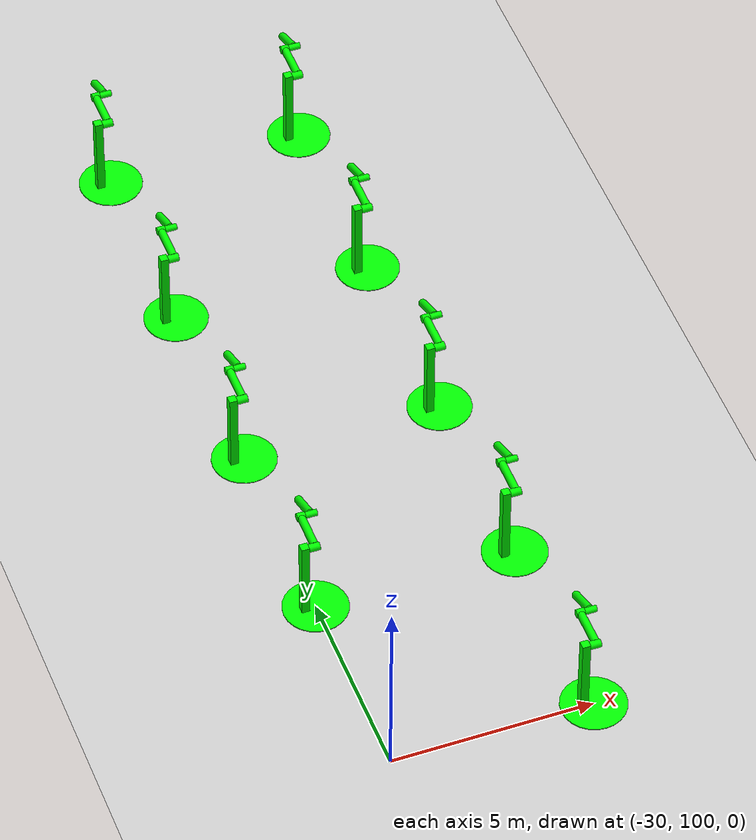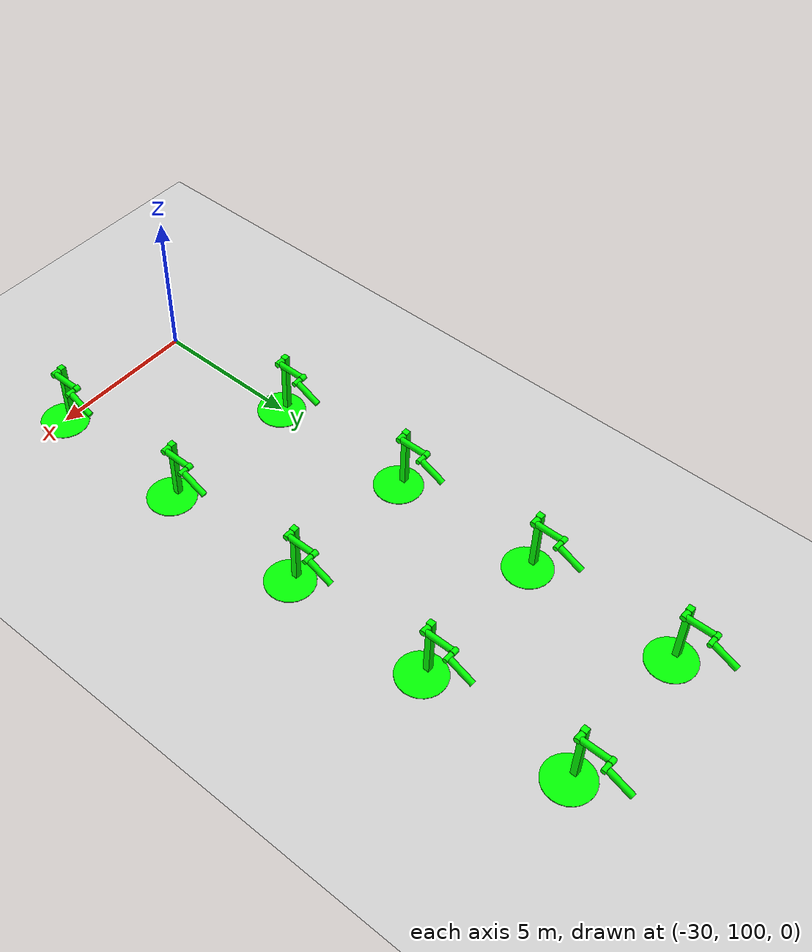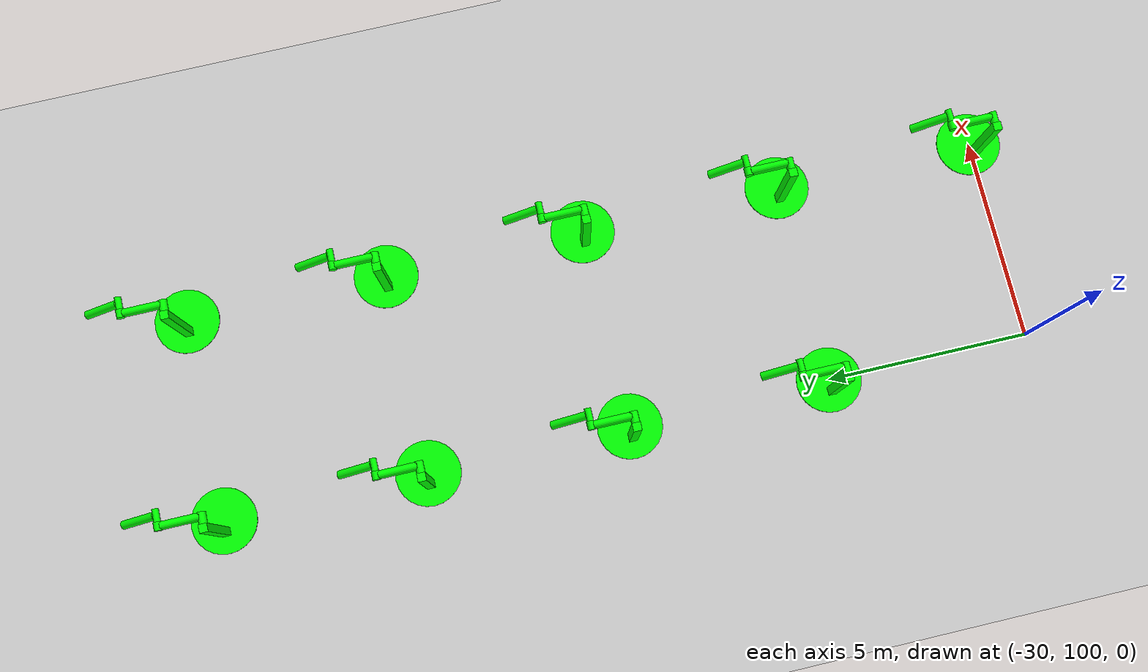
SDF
<sdf version="1.6">
 <world name="double_pendulums">
  <model name="ground_plane">
   <static>true</static>
   <link name="link">
    <collision name="collision">
     <geometry><plane><normal>0 0 1</normal><size>100 100</size></plane></geometry>
    </collision>
    <visual name="visual">
     <geometry><plane><normal>0 0 1</normal><size>100 100</size></plane></geometry>
     <material>
      <ambient>0.8 0.8 0.8 1</ambient>
      <diffuse>0.8 0.8 0.8 1</diffuse>
      <specular>0.8 0.8 0.8 1</specular>
     </material>
    </visual>
   </link>
  </model>
  <model name="dbl_pendulum_505">
   <pose>-25 100 0 0 0 0</pose>
   <link name="base">
    <inertial><mass>100</mass></inertial>
    <visual name="vis_plate_on_ground">
     <pose>0 0 0.01 0 0 0</pose>
     <geometry><cylinder><radius>0.8</radius><length>0.02</length></cylinder></geometry>
     <material><ambient>0 1 0 1</ambient><diffuse>0 1 0 1</diffuse><specular>0 1 0 1</specular></material>
    </visual>
    <visual name="vis_pole">
     <pose>-0.275 0 1.1 0 0 0</pose>
     <geometry><box><size>0.2 0.2 2.2</size></box></geometry>
     <material><ambient>0 1 0 1</ambient><diffuse>0 1 0 1</diffuse><specular>0 1 0 1</specular></material>
    </visual>
    <collision name="col_plate_on_ground">
     <pose>0 0 0.01 0 0 0</pose>
     <geometry><cylinder><radius>0.8</radius><length>0.02</length></cylinder></geometry>
    </collision>
    <collision name="col_pole">
     <pose>-0.275 0 1.1 0 0 0</pose>
     <geometry><box><size>0.2 0.2 2.2</size></box></geometry>
    </collision>
   </link>
   <link name="upper_link">
    <pose>0 0 2.1 -1.5708 0 0</pose>
    <inertial><pose>0 0 0.5 0 0 0</pose></inertial>
    <visual name="vis_upper_joint">
     <pose>-0.05 0 0 0 1.5708 0</pose>
     <geometry><cylinder><radius>0.1</radius><length>0.3</length></cylinder></geometry>
     <material><ambient>0 1 0 1</ambient><diffuse>0 1 0 1</diffuse><specular>0 1 0 1</specular></material>
    </visual>
    <visual name="vis_lower_joint">
     <pose>0 0 1.0 0 1.5708 0</pose>
     <geometry><cylinder><radius>0.1</radius><length>0.2</length></cylinder></geometry>
     <material><ambient>0 1 0 1</ambient><diffuse>0 1 0 1</diffuse><specular>0 1 0 1</specular></material>
    </visual>
    <visual name="vis_cylinder">
     <pose>0 0 0.5 0 0 0</pose>
     <geometry><cylinder><radius>0.1</radius><length>0.9</length></cylinder></geometry>
     <material><ambient>0 1 0 1</ambient><diffuse>0 1 0 1</diffuse><specular>0 1 0 1</specular></material>
    </visual>
    <collision name="col_upper_joint">
     <pose>-0.05 0 0 0 1.5708 0</pose>
     <geometry><cylinder><radius>0.1</radius><length>0.3</length></cylinder></geometry>
    </collision>
    <collision name="col_lower_joint">
     <pose>0 0 1.0 0 1.5708 0</pose>
     <geometry><cylinder><radius>0.1</radius><length>0.2</length></cylinder></geometry>
    </collision>
    <collision name="col_cylinder">
     <pose>0 0 0.5 0 0 0</pose>
     <geometry><cylinder><radius>0.1</radius><length>0.9</length></cylinder></geometry>
    </collision>
   </link>
   <link name="lower_link">
    <pose>0.25 1.0 2.1 -2 0 0</pose>
    <inertial><pose>0 0 0.5 0 0 0</pose></inertial>
    <visual name="vis_lower_joint">
     <pose>0 0 0 0 1.5708 0</pose>
     <geometry><cylinder><radius>0.08</radius><length>0.3</length></cylinder></geometry>
     <material><ambient>0 1 0 1</ambient><diffuse>0 1 0 1</diffuse><specular>0 1 0 1</specular></material>
    </visual>
    <visual name="vis_cylinder">
     <pose>0 0 0.5 0 0 0</pose>
     <geometry><cylinder><radius>0.1</radius><length>0.9</length></cylinder></geometry>
     <material><ambient>0 1 0 1</ambient><diffuse>0 1 0 1</diffuse><specular>0 1 0 1</specular></material>
    </visual>
    <collision name="col_lower_joint">
     <pose>0 0 0 0 1.5708 0</pose>
     <geometry><cylinder><radius>0.08</radius><length>0.3</length></cylinder></geometry>
    </collision>
    <collision name="col_cylinder">
     <pose>0 0 0.5 0 0 0</pose>
     <geometry><cylinder><radius>0.1</radius><length>0.9</length></cylinder></geometry>
    </collision>
   </link>
   <joint name="upper_joint" type="revolute">
    <parent>base</parent>
    <child>upper_link</child>
    <axis><xyz>1.0 0 0</xyz></axis>
   </joint>
   <joint name="lower_joint" type="revolute">
    <parent>upper_link</parent>
    <child>lower_link</child>
    <axis><xyz>1.0 0 0</xyz></axis>
   </joint>
  </model>
  <model name="dbl_pendulum_529">
   <pose>-30 105 0 0 0 0</pose>
   <link name="base">
    <inertial><mass>100</mass></inertial>
    <visual name="vis_plate_on_ground">
     <pose>0 0 0.01 0 0 0</pose>
     <geometry><cylinder><radius>0.8</radius><length>0.02</length></cylinder></geometry>
     <material><ambient>0 1 0 1</ambient><diffuse>0 1 0 1</diffuse><specular>0 1 0 1</specular></material>
    </visual>
    <visual name="vis_pole">
     <pose>-0.275 0 1.1 0 0 0</pose>
     <geometry><box><size>0.2 0.2 2.2</size></box></geometry>
     <material><ambient>0 1 0 1</ambient><diffuse>0 1 0 1</diffuse><specular>0 1 0 1</specular></material>
    </visual>
    <collision name="col_plate_on_ground">
     <pose>0 0 0.01 0 0 0</pose>
     <geometry><cylinder><radius>0.8</radius><length>0.02</length></cylinder></geometry>
    </collision>
    <collision name="col_pole">
     <pose>-0.275 0 1.1 0 0 0</pose>
     <geometry><box><size>0.2 0.2 2.2</size></box></geometry>
    </collision>
   </link>
   <link name="upper_link">
    <pose>0 0 2.1 -1.5708 0 0</pose>
    <inertial><pose>0 0 0.5 0 0 0</pose></inertial>
    <visual name="vis_upper_joint">
     <pose>-0.05 0 0 0 1.5708 0</pose>
     <geometry><cylinder><radius>0.1</radius><length>0.3</length></cylinder></geometry>
     <material><ambient>0 1 0 1</ambient><diffuse>0 1 0 1</diffuse><specular>0 1 0 1</specular></material>
    </visual>
    <visual name="vis_lower_joint">
     <pose>0 0 1.0 0 1.5708 0</pose>
     <geometry><cylinder><radius>0.1</radius><length>0.2</length></cylinder></geometry>
     <material><ambient>0 1 0 1</ambient><diffuse>0 1 0 1</diffuse><specular>0 1 0 1</specular></material>
    </visual>
    <visual name="vis_cylinder">
     <pose>0 0 0.5 0 0 0</pose>
     <geometry><cylinder><radius>0.1</radius><length>0.9</length></cylinder></geometry>
     <material><ambient>0 1 0 1</ambient><diffuse>0 1 0 1</diffuse><specular>0 1 0 1</specular></material>
    </visual>
    <collision name="col_upper_joint">
     <pose>-0.05 0 0 0 1.5708 0</pose>
     <geometry><cylinder><radius>0.1</radius><length>0.3</length></cylinder></geometry>
    </collision>
    <collision name="col_lower_joint">
     <pose>0 0 1.0 0 1.5708 0</pose>
     <geometry><cylinder><radius>0.1</radius><length>0.2</length></cylinder></geometry>
    </collision>
    <collision name="col_cylinder">
     <pose>0 0 0.5 0 0 0</pose>
     <geometry><cylinder><radius>0.1</radius><length>0.9</length></cylinder></geometry>
    </collision>
   </link>
   <link name="lower_link">
    <pose>0.25 1.0 2.1 -2 0 0</pose>
    <inertial><pose>0 0 0.5 0 0 0</pose></inertial>
    <visual name="vis_lower_joint">
     <pose>0 0 0 0 1.5708 0</pose>
     <geometry><cylinder><radius>0.08</radius><length>0.3</length></cylinder></geometry>
     <material><ambient>0 1 0 1</ambient><diffuse>0 1 0 1</diffuse><specular>0 1 0 1</specular></material>
    </visual>
    <visual name="vis_cylinder">
     <pose>0 0 0.5 0 0 0</pose>
     <geometry><cylinder><radius>0.1</radius><length>0.9</length></cylinder></geometry>
     <material><ambient>0 1 0 1</ambient><diffuse>0 1 0 1</diffuse><specular>0 1 0 1</specular></material>
    </visual>
    <collision name="col_lower_joint">
     <pose>0 0 0 0 1.5708 0</pose>
     <geometry><cylinder><radius>0.08</radius><length>0.3</length></cylinder></geometry>
    </collision>
    <collision name="col_cylinder">
     <pose>0 0 0.5 0 0 0</pose>
     <geometry><cylinder><radius>0.1</radius><length>0.9</length></cylinder></geometry>
    </collision>
   </link>
   <joint name="upper_joint" type="revolute">
    <parent>base</parent>
    <child>upper_link</child>
    <axis><xyz>1.0 0 0</xyz></axis>
   </joint>
   <joint name="lower_joint" type="revolute">
    <parent>upper_link</parent>
    <child>lower_link</child>
    <axis><xyz>1.0 0 0</xyz></axis>
   </joint>
  </model>
  <model name="dbl_pendulum_530">
   <pose>-25 105 0 0 0 0</pose>
   <link name="base">
    <inertial><mass>100</mass></inertial>
    <visual name="vis_plate_on_ground">
     <pose>0 0 0.01 0 0 0</pose>
     <geometry><cylinder><radius>0.8</radius><length>0.02</length></cylinder></geometry>
     <material><ambient>0 1 0 1</ambient><diffuse>0 1 0 1</diffuse><specular>0 1 0 1</specular></material>
    </visual>
    <visual name="vis_pole">
     <pose>-0.275 0 1.1 0 0 0</pose>
     <geometry><box><size>0.2 0.2 2.2</size></box></geometry>
     <material><ambient>0 1 0 1</ambient><diffuse>0 1 0 1</diffuse><specular>0 1 0 1</specular></material>
    </visual>
    <collision name="col_plate_on_ground">
     <pose>0 0 0.01 0 0 0</pose>
     <geometry><cylinder><radius>0.8</radius><length>0.02</length></cylinder></geometry>
    </collision>
    <collision name="col_pole">
     <pose>-0.275 0 1.1 0 0 0</pose>
     <geometry><box><size>0.2 0.2 2.2</size></box></geometry>
    </collision>
   </link>
   <link name="upper_link">
    <pose>0 0 2.1 -1.5708 0 0</pose>
    <inertial><pose>0 0 0.5 0 0 0</pose></inertial>
    <visual name="vis_upper_joint">
     <pose>-0.05 0 0 0 1.5708 0</pose>
     <geometry><cylinder><radius>0.1</radius><length>0.3</length></cylinder></geometry>
     <material><ambient>0 1 0 1</ambient><diffuse>0 1 0 1</diffuse><specular>0 1 0 1</specular></material>
    </visual>
    <visual name="vis_lower_joint">
     <pose>0 0 1.0 0 1.5708 0</pose>
     <geometry><cylinder><radius>0.1</radius><length>0.2</length></cylinder></geometry>
     <material><ambient>0 1 0 1</ambient><diffuse>0 1 0 1</diffuse><specular>0 1 0 1</specular></material>
    </visual>
    <visual name="vis_cylinder">
     <pose>0 0 0.5 0 0 0</pose>
     <geometry><cylinder><radius>0.1</radius><length>0.9</length></cylinder></geometry>
     <material><ambient>0 1 0 1</ambient><diffuse>0 1 0 1</diffuse><specular>0 1 0 1</specular></material>
    </visual>
    <collision name="col_upper_joint">
     <pose>-0.05 0 0 0 1.5708 0</pose>
     <geometry><cylinder><radius>0.1</radius><length>0.3</length></cylinder></geometry>
    </collision>
    <collision name="col_lower_joint">
     <pose>0 0 1.0 0 1.5708 0</pose>
     <geometry><cylinder><radius>0.1</radius><length>0.2</length></cylinder></geometry>
    </collision>
    <collision name="col_cylinder">
     <pose>0 0 0.5 0 0 0</pose>
     <geometry><cylinder><radius>0.1</radius><length>0.9</length></cylinder></geometry>
    </collision>
   </link>
   <link name="lower_link">
    <pose>0.25 1.0 2.1 -2 0 0</pose>
    <inertial><pose>0 0 0.5 0 0 0</pose></inertial>
    <visual name="vis_lower_joint">
     <pose>0 0 0 0 1.5708 0</pose>
     <geometry><cylinder><radius>0.08</radius><length>0.3</length></cylinder></geometry>
     <material><ambient>0 1 0 1</ambient><diffuse>0 1 0 1</diffuse><specular>0 1 0 1</specular></material>
    </visual>
    <visual name="vis_cylinder">
     <pose>0 0 0.5 0 0 0</pose>
     <geometry><cylinder><radius>0.1</radius><length>0.9</length></cylinder></geometry>
     <material><ambient>0 1 0 1</ambient><diffuse>0 1 0 1</diffuse><specular>0 1 0 1</specular></material>
    </visual>
    <collision name="col_lower_joint">
     <pose>0 0 0 0 1.5708 0</pose>
     <geometry><cylinder><radius>0.08</radius><length>0.3</length></cylinder></geometry>
    </collision>
    <collision name="col_cylinder">
     <pose>0 0 0.5 0 0 0</pose>
     <geometry><cylinder><radius>0.1</radius><length>0.9</length></cylinder></geometry>
    </collision>
   </link>
   <joint name="upper_joint" type="revolute">
    <parent>base</parent>
    <child>upper_link</child>
    <axis><xyz>1.0 0 0</xyz></axis>
   </joint>
   <joint name="lower_joint" type="revolute">
    <parent>upper_link</parent>
    <child>lower_link</child>
    <axis><xyz>1.0 0 0</xyz></axis>
   </joint>
  </model>
  <model name="dbl_pendulum_554">
   <pose>-30 110 0 0 0 0</pose>
   <link name="base">
    <inertial><mass>100</mass></inertial>
    <visual name="vis_plate_on_ground">
     <pose>0 0 0.01 0 0 0</pose>
     <geometry><cylinder><radius>0.8</radius><length>0.02</length></cylinder></geometry>
     <material><ambient>0 1 0 1</ambient><diffuse>0 1 0 1</diffuse><specular>0 1 0 1</specular></material>
    </visual>
    <visual name="vis_pole">
     <pose>-0.275 0 1.1 0 0 0</pose>
     <geometry><box><size>0.2 0.2 2.2</size></box></geometry>
     <material><ambient>0 1 0 1</ambient><diffuse>0 1 0 1</diffuse><specular>0 1 0 1</specular></material>
    </visual>
    <collision name="col_plate_on_ground">
     <pose>0 0 0.01 0 0 0</pose>
     <geometry><cylinder><radius>0.8</radius><length>0.02</length></cylinder></geometry>
    </collision>
    <collision name="col_pole">
     <pose>-0.275 0 1.1 0 0 0</pose>
     <geometry><box><size>0.2 0.2 2.2</size></box></geometry>
    </collision>
   </link>
   <link name="upper_link">
    <pose>0 0 2.1 -1.5708 0 0</pose>
    <inertial><pose>0 0 0.5 0 0 0</pose></inertial>
    <visual name="vis_upper_joint">
     <pose>-0.05 0 0 0 1.5708 0</pose>
     <geometry><cylinder><radius>0.1</radius><length>0.3</length></cylinder></geometry>
     <material><ambient>0 1 0 1</ambient><diffuse>0 1 0 1</diffuse><specular>0 1 0 1</specular></material>
    </visual>
    <visual name="vis_lower_joint">
     <pose>0 0 1.0 0 1.5708 0</pose>
     <geometry><cylinder><radius>0.1</radius><length>0.2</length></cylinder></geometry>
     <material><ambient>0 1 0 1</ambient><diffuse>0 1 0 1</diffuse><specular>0 1 0 1</specular></material>
    </visual>
    <visual name="vis_cylinder">
     <pose>0 0 0.5 0 0 0</pose>
     <geometry><cylinder><radius>0.1</radius><length>0.9</length></cylinder></geometry>
     <material><ambient>0 1 0 1</ambient><diffuse>0 1 0 1</diffuse><specular>0 1 0 1</specular></material>
    </visual>
    <collision name="col_upper_joint">
     <pose>-0.05 0 0 0 1.5708 0</pose>
     <geometry><cylinder><radius>0.1</radius><length>0.3</length></cylinder></geometry>
    </collision>
    <collision name="col_lower_joint">
     <pose>0 0 1.0 0 1.5708 0</pose>
     <geometry><cylinder><radius>0.1</radius><length>0.2</length></cylinder></geometry>
    </collision>
    <collision name="col_cylinder">
     <pose>0 0 0.5 0 0 0</pose>
     <geometry><cylinder><radius>0.1</radius><length>0.9</length></cylinder></geometry>
    </collision>
   </link>
   <link name="lower_link">
    <pose>0.25 1.0 2.1 -2 0 0</pose>
    <inertial><pose>0 0 0.5 0 0 0</pose></inertial>
    <visual name="vis_lower_joint">
     <pose>0 0 0 0 1.5708 0</pose>
     <geometry><cylinder><radius>0.08</radius><length>0.3</length></cylinder></geometry>
     <material><ambient>0 1 0 1</ambient><diffuse>0 1 0 1</diffuse><specular>0 1 0 1</specular></material>
    </visual>
    <visual name="vis_cylinder">
     <pose>0 0 0.5 0 0 0</pose>
     <geometry><cylinder><radius>0.1</radius><length>0.9</length></cylinder></geometry>
     <material><ambient>0 1 0 1</ambient><diffuse>0 1 0 1</diffuse><specular>0 1 0 1</specular></material>
    </visual>
    <collision name="col_lower_joint">
     <pose>0 0 0 0 1.5708 0</pose>
     <geometry><cylinder><radius>0.08</radius><length>0.3</length></cylinder></geometry>
    </collision>
    <collision name="col_cylinder">
     <pose>0 0 0.5 0 0 0</pose>
     <geometry><cylinder><radius>0.1</radius><length>0.9</length></cylinder></geometry>
    </collision>
   </link>
   <joint name="upper_joint" type="revolute">
    <parent>base</parent>
    <child>upper_link</child>
    <axis><xyz>1.0 0 0</xyz></axis>
   </joint>
   <joint name="lower_joint" type="revolute">
    <parent>upper_link</parent>
    <child>lower_link</child>
    <axis><xyz>1.0 0 0</xyz></axis>
   </joint>
  </model>
  <model name="dbl_pendulum_555">
   <pose>-25 110 0 0 0 0</pose>
   <link name="base">
    <inertial><mass>100</mass></inertial>
    <visual name="vis_plate_on_ground">
     <pose>0 0 0.01 0 0 0</pose>
     <geometry><cylinder><radius>0.8</radius><length>0.02</length></cylinder></geometry>
     <material><ambient>0 1 0 1</ambient><diffuse>0 1 0 1</diffuse><specular>0 1 0 1</specular></material>
    </visual>
    <visual name="vis_pole">
     <pose>-0.275 0 1.1 0 0 0</pose>
     <geometry><box><size>0.2 0.2 2.2</size></box></geometry>
     <material><ambient>0 1 0 1</ambient><diffuse>0 1 0 1</diffuse><specular>0 1 0 1</specular></material>
    </visual>
    <collision name="col_plate_on_ground">
     <pose>0 0 0.01 0 0 0</pose>
     <geometry><cylinder><radius>0.8</radius><length>0.02</length></cylinder></geometry>
    </collision>
    <collision name="col_pole">
     <pose>-0.275 0 1.1 0 0 0</pose>
     <geometry><box><size>0.2 0.2 2.2</size></box></geometry>
    </collision>
   </link>
   <link name="upper_link">
    <pose>0 0 2.1 -1.5708 0 0</pose>
    <inertial><pose>0 0 0.5 0 0 0</pose></inertial>
    <visual name="vis_upper_joint">
     <pose>-0.05 0 0 0 1.5708 0</pose>
     <geometry><cylinder><radius>0.1</radius><length>0.3</length></cylinder></geometry>
     <material><ambient>0 1 0 1</ambient><diffuse>0 1 0 1</diffuse><specular>0 1 0 1</specular></material>
    </visual>
    <visual name="vis_lower_joint">
     <pose>0 0 1.0 0 1.5708 0</pose>
     <geometry><cylinder><radius>0.1</radius><length>0.2</length></cylinder></geometry>
     <material><ambient>0 1 0 1</ambient><diffuse>0 1 0 1</diffuse><specular>0 1 0 1</specular></material>
    </visual>
    <visual name="vis_cylinder">
     <pose>0 0 0.5 0 0 0</pose>
     <geometry><cylinder><radius>0.1</radius><length>0.9</length></cylinder></geometry>
     <material><ambient>0 1 0 1</ambient><diffuse>0 1 0 1</diffuse><specular>0 1 0 1</specular></material>
    </visual>
    <collision name="col_upper_joint">
     <pose>-0.05 0 0 0 1.5708 0</pose>
     <geometry><cylinder><radius>0.1</radius><length>0.3</length></cylinder></geometry>
    </collision>
    <collision name="col_lower_joint">
     <pose>0 0 1.0 0 1.5708 0</pose>
     <geometry><cylinder><radius>0.1</radius><length>0.2</length></cylinder></geometry>
    </collision>
    <collision name="col_cylinder">
     <pose>0 0 0.5 0 0 0</pose>
     <geometry><cylinder><radius>0.1</radius><length>0.9</length></cylinder></geometry>
    </collision>
   </link>
   <link name="lower_link">
    <pose>0.25 1.0 2.1 -2 0 0</pose>
    <inertial><pose>0 0 0.5 0 0 0</pose></inertial>
    <visual name="vis_lower_joint">
     <pose>0 0 0 0 1.5708 0</pose>
     <geometry><cylinder><radius>0.08</radius><length>0.3</length></cylinder></geometry>
     <material><ambient>0 1 0 1</ambient><diffuse>0 1 0 1</diffuse><specular>0 1 0 1</specular></material>
    </visual>
    <visual name="vis_cylinder">
     <pose>0 0 0.5 0 0 0</pose>
     <geometry><cylinder><radius>0.1</radius><length>0.9</length></cylinder></geometry>
     <material><ambient>0 1 0 1</ambient><diffuse>0 1 0 1</diffuse><specular>0 1 0 1</specular></material>
    </visual>
    <collision name="col_lower_joint">
     <pose>0 0 0 0 1.5708 0</pose>
     <geometry><cylinder><radius>0.08</radius><length>0.3</length></cylinder></geometry>
    </collision>
    <collision name="col_cylinder">
     <pose>0 0 0.5 0 0 0</pose>
     <geometry><cylinder><radius>0.1</radius><length>0.9</length></cylinder></geometry>
    </collision>
   </link>
   <joint name="upper_joint" type="revolute">
    <parent>base</parent>
    <child>upper_link</child>
    <axis><xyz>1.0 0 0</xyz></axis>
   </joint>
   <joint name="lower_joint" type="revolute">
    <parent>upper_link</parent>
    <child>lower_link</child>
    <axis><xyz>1.0 0 0</xyz></axis>
   </joint>
  </model>
  <model name="dbl_pendulum_579">
   <pose>-30 115 0 0 0 0</pose>
   <link name="base">
    <inertial><mass>100</mass></inertial>
    <visual name="vis_plate_on_ground">
     <pose>0 0 0.01 0 0 0</pose>
     <geometry><cylinder><radius>0.8</radius><length>0.02</length></cylinder></geometry>
     <material><ambient>0 1 0 1</ambient><diffuse>0 1 0 1</diffuse><specular>0 1 0 1</specular></material>
    </visual>
    <visual name="vis_pole">
     <pose>-0.275 0 1.1 0 0 0</pose>
     <geometry><box><size>0.2 0.2 2.2</size></box></geometry>
     <material><ambient>0 1 0 1</ambient><diffuse>0 1 0 1</diffuse><specular>0 1 0 1</specular></material>
    </visual>
    <collision name="col_plate_on_ground">
     <pose>0 0 0.01 0 0 0</pose>
     <geometry><cylinder><radius>0.8</radius><length>0.02</length></cylinder></geometry>
    </collision>
    <collision name="col_pole">
     <pose>-0.275 0 1.1 0 0 0</pose>
     <geometry><box><size>0.2 0.2 2.2</size></box></geometry>
    </collision>
   </link>
   <link name="upper_link">
    <pose>0 0 2.1 -1.5708 0 0</pose>
    <inertial><pose>0 0 0.5 0 0 0</pose></inertial>
    <visual name="vis_upper_joint">
     <pose>-0.05 0 0 0 1.5708 0</pose>
     <geometry><cylinder><radius>0.1</radius><length>0.3</length></cylinder></geometry>
     <material><ambient>0 1 0 1</ambient><diffuse>0 1 0 1</diffuse><specular>0 1 0 1</specular></material>
    </visual>
    <visual name="vis_lower_joint">
     <pose>0 0 1.0 0 1.5708 0</pose>
     <geometry><cylinder><radius>0.1</radius><length>0.2</length></cylinder></geometry>
     <material><ambient>0 1 0 1</ambient><diffuse>0 1 0 1</diffuse><specular>0 1 0 1</specular></material>
    </visual>
    <visual name="vis_cylinder">
     <pose>0 0 0.5 0 0 0</pose>
     <geometry><cylinder><radius>0.1</radius><length>0.9</length></cylinder></geometry>
     <material><ambient>0 1 0 1</ambient><diffuse>0 1 0 1</diffuse><specular>0 1 0 1</specular></material>
    </visual>
    <collision name="col_upper_joint">
     <pose>-0.05 0 0 0 1.5708 0</pose>
     <geometry><cylinder><radius>0.1</radius><length>0.3</length></cylinder></geometry>
    </collision>
    <collision name="col_lower_joint">
     <pose>0 0 1.0 0 1.5708 0</pose>
     <geometry><cylinder><radius>0.1</radius><length>0.2</length></cylinder></geometry>
    </collision>
    <collision name="col_cylinder">
     <pose>0 0 0.5 0 0 0</pose>
     <geometry><cylinder><radius>0.1</radius><length>0.9</length></cylinder></geometry>
    </collision>
   </link>
   <link name="lower_link">
    <pose>0.25 1.0 2.1 -2 0 0</pose>
    <inertial><pose>0 0 0.5 0 0 0</pose></inertial>
    <visual name="vis_lower_joint">
     <pose>0 0 0 0 1.5708 0</pose>
     <geometry><cylinder><radius>0.08</radius><length>0.3</length></cylinder></geometry>
     <material><ambient>0 1 0 1</ambient><diffuse>0 1 0 1</diffuse><specular>0 1 0 1</specular></material>
    </visual>
    <visual name="vis_cylinder">
     <pose>0 0 0.5 0 0 0</pose>
     <geometry><cylinder><radius>0.1</radius><length>0.9</length></cylinder></geometry>
     <material><ambient>0 1 0 1</ambient><diffuse>0 1 0 1</diffuse><specular>0 1 0 1</specular></material>
    </visual>
    <collision name="col_lower_joint">
     <pose>0 0 0 0 1.5708 0</pose>
     <geometry><cylinder><radius>0.08</radius><length>0.3</length></cylinder></geometry>
    </collision>
    <collision name="col_cylinder">
     <pose>0 0 0.5 0 0 0</pose>
     <geometry><cylinder><radius>0.1</radius><length>0.9</length></cylinder></geometry>
    </collision>
   </link>
   <joint name="upper_joint" type="revolute">
    <parent>base</parent>
    <child>upper_link</child>
    <axis><xyz>1.0 0 0</xyz></axis>
   </joint>
   <joint name="lower_joint" type="revolute">
    <parent>upper_link</parent>
    <child>lower_link</child>
    <axis><xyz>1.0 0 0</xyz></axis>
   </joint>
  </model>
  <model name="dbl_pendulum_580">
   <pose>-25 115 0 0 0 0</pose>
   <link name="base">
    <inertial><mass>100</mass></inertial>
    <visual name="vis_plate_on_ground">
     <pose>0 0 0.01 0 0 0</pose>
     <geometry><cylinder><radius>0.8</radius><length>0.02</length></cylinder></geometry>
     <material><ambient>0 1 0 1</ambient><diffuse>0 1 0 1</diffuse><specular>0 1 0 1</specular></material>
    </visual>
    <visual name="vis_pole">
     <pose>-0.275 0 1.1 0 0 0</pose>
     <geometry><box><size>0.2 0.2 2.2</size></box></geometry>
     <material><ambient>0 1 0 1</ambient><diffuse>0 1 0 1</diffuse><specular>0 1 0 1</specular></material>
    </visual>
    <collision name="col_plate_on_ground">
     <pose>0 0 0.01 0 0 0</pose>
     <geometry><cylinder><radius>0.8</radius><length>0.02</length></cylinder></geometry>
    </collision>
    <collision name="col_pole">
     <pose>-0.275 0 1.1 0 0 0</pose>
     <geometry><box><size>0.2 0.2 2.2</size></box></geometry>
    </collision>
   </link>
   <link name="upper_link">
    <pose>0 0 2.1 -1.5708 0 0</pose>
    <inertial><pose>0 0 0.5 0 0 0</pose></inertial>
    <visual name="vis_upper_joint">
     <pose>-0.05 0 0 0 1.5708 0</pose>
     <geometry><cylinder><radius>0.1</radius><length>0.3</length></cylinder></geometry>
     <material><ambient>0 1 0 1</ambient><diffuse>0 1 0 1</diffuse><specular>0 1 0 1</specular></material>
    </visual>
    <visual name="vis_lower_joint">
     <pose>0 0 1.0 0 1.5708 0</pose>
     <geometry><cylinder><radius>0.1</radius><length>0.2</length></cylinder></geometry>
     <material><ambient>0 1 0 1</ambient><diffuse>0 1 0 1</diffuse><specular>0 1 0 1</specular></material>
    </visual>
    <visual name="vis_cylinder">
     <pose>0 0 0.5 0 0 0</pose>
     <geometry><cylinder><radius>0.1</radius><length>0.9</length></cylinder></geometry>
     <material><ambient>0 1 0 1</ambient><diffuse>0 1 0 1</diffuse><specular>0 1 0 1</specular></material>
    </visual>
    <collision name="col_upper_joint">
     <pose>-0.05 0 0 0 1.5708 0</pose>
     <geometry><cylinder><radius>0.1</radius><length>0.3</length></cylinder></geometry>
    </collision>
    <collision name="col_lower_joint">
     <pose>0 0 1.0 0 1.5708 0</pose>
     <geometry><cylinder><radius>0.1</radius><length>0.2</length></cylinder></geometry>
    </collision>
    <collision name="col_cylinder">
     <pose>0 0 0.5 0 0 0</pose>
     <geometry><cylinder><radius>0.1</radius><length>0.9</length></cylinder></geometry>
    </collision>
   </link>
   <link name="lower_link">
    <pose>0.25 1.0 2.1 -2 0 0</pose>
    <inertial><pose>0 0 0.5 0 0 0</pose></inertial>
    <visual name="vis_lower_joint">
     <pose>0 0 0 0 1.5708 0</pose>
     <geometry><cylinder><radius>0.08</radius><length>0.3</length></cylinder></geometry>
     <material><ambient>0 1 0 1</ambient><diffuse>0 1 0 1</diffuse><specular>0 1 0 1</specular></material>
    </visual>
    <visual name="vis_cylinder">
     <pose>0 0 0.5 0 0 0</pose>
     <geometry><cylinder><radius>0.1</radius><length>0.9</length></cylinder></geometry>
     <material><ambient>0 1 0 1</ambient><diffuse>0 1 0 1</diffuse><specular>0 1 0 1</specular></material>
    </visual>
    <collision name="col_lower_joint">
     <pose>0 0 0 0 1.5708 0</pose>
     <geometry><cylinder><radius>0.08</radius><length>0.3</length></cylinder></geometry>
    </collision>
    <collision name="col_cylinder">
     <pose>0 0 0.5 0 0 0</pose>
     <geometry><cylinder><radius>0.1</radius><length>0.9</length></cylinder></geometry>
    </collision>
   </link>
   <joint name="upper_joint" type="revolute">
    <parent>base</parent>
    <child>upper_link</child>
    <axis><xyz>1.0 0 0</xyz></axis>
   </joint>
   <joint name="lower_joint" type="revolute">
    <parent>upper_link</parent>
    <child>lower_link</child>
    <axis><xyz>1.0 0 0</xyz></axis>
   </joint>
  </model>
  <model name="dbl_pendulum_604">
   <pose>-30 120 0 0 0 0</pose>
   <link name="base">
    <inertial><mass>100</mass></inertial>
    <visual name="vis_plate_on_ground">
     <pose>0 0 0.01 0 0 0</pose>
     <geometry><cylinder><radius>0.8</radius><length>0.02</length></cylinder></geometry>
     <material><ambient>0 1 0 1</ambient><diffuse>0 1 0 1</diffuse><specular>0 1 0 1</specular></material>
    </visual>
    <visual name="vis_pole">
     <pose>-0.275 0 1.1 0 0 0</pose>
     <geometry><box><size>0.2 0.2 2.2</size></box></geometry>
     <material><ambient>0 1 0 1</ambient><diffuse>0 1 0 1</diffuse><specular>0 1 0 1</specular></material>
    </visual>
    <collision name="col_plate_on_ground">
     <pose>0 0 0.01 0 0 0</pose>
     <geometry><cylinder><radius>0.8</radius><length>0.02</length></cylinder></geometry>
    </collision>
    <collision name="col_pole">
     <pose>-0.275 0 1.1 0 0 0</pose>
     <geometry><box><size>0.2 0.2 2.2</size></box></geometry>
    </collision>
   </link>
   <link name="upper_link">
    <pose>0 0 2.1 -1.5708 0 0</pose>
    <inertial><pose>0 0 0.5 0 0 0</pose></inertial>
    <visual name="vis_upper_joint">
     <pose>-0.05 0 0 0 1.5708 0</pose>
     <geometry><cylinder><radius>0.1</radius><length>0.3</length></cylinder></geometry>
     <material><ambient>0 1 0 1</ambient><diffuse>0 1 0 1</diffuse><specular>0 1 0 1</specular></material>
    </visual>
    <visual name="vis_lower_joint">
     <pose>0 0 1.0 0 1.5708 0</pose>
     <geometry><cylinder><radius>0.1</radius><length>0.2</length></cylinder></geometry>
     <material><ambient>0 1 0 1</ambient><diffuse>0 1 0 1</diffuse><specular>0 1 0 1</specular></material>
    </visual>
    <visual name="vis_cylinder">
     <pose>0 0 0.5 0 0 0</pose>
     <geometry><cylinder><radius>0.1</radius><length>0.9</length></cylinder></geometry>
     <material><ambient>0 1 0 1</ambient><diffuse>0 1 0 1</diffuse><specular>0 1 0 1</specular></material>
    </visual>
    <collision name="col_upper_joint">
     <pose>-0.05 0 0 0 1.5708 0</pose>
     <geometry><cylinder><radius>0.1</radius><length>0.3</length></cylinder></geometry>
    </collision>
    <collision name="col_lower_joint">
     <pose>0 0 1.0 0 1.5708 0</pose>
     <geometry><cylinder><radius>0.1</radius><length>0.2</length></cylinder></geometry>
    </collision>
    <collision name="col_cylinder">
     <pose>0 0 0.5 0 0 0</pose>
     <geometry><cylinder><radius>0.1</radius><length>0.9</length></cylinder></geometry>
    </collision>
   </link>
   <link name="lower_link">
    <pose>0.25 1.0 2.1 -2 0 0</pose>
    <inertial><pose>0 0 0.5 0 0 0</pose></inertial>
    <visual name="vis_lower_joint">
     <pose>0 0 0 0 1.5708 0</pose>
     <geometry><cylinder><radius>0.08</radius><length>0.3</length></cylinder></geometry>
     <material><ambient>0 1 0 1</ambient><diffuse>0 1 0 1</diffuse><specular>0 1 0 1</specular></material>
    </visual>
    <visual name="vis_cylinder">
     <pose>0 0 0.5 0 0 0</pose>
     <geometry><cylinder><radius>0.1</radius><length>0.9</length></cylinder></geometry>
     <material><ambient>0 1 0 1</ambient><diffuse>0 1 0 1</diffuse><specular>0 1 0 1</specular></material>
    </visual>
    <collision name="col_lower_joint">
     <pose>0 0 0 0 1.5708 0</pose>
     <geometry><cylinder><radius>0.08</radius><length>0.3</length></cylinder></geometry>
    </collision>
    <collision name="col_cylinder">
     <pose>0 0 0.5 0 0 0</pose>
     <geometry><cylinder><radius>0.1</radius><length>0.9</length></cylinder></geometry>
    </collision>
   </link>
   <joint name="upper_joint" type="revolute">
    <parent>base</parent>
    <child>upper_link</child>
    <axis><xyz>1.0 0 0</xyz></axis>
   </joint>
   <joint name="lower_joint" type="revolute">
    <parent>upper_link</parent>
    <child>lower_link</child>
    <axis><xyz>1.0 0 0</xyz></axis>
   </joint>
  </model>
  <model name="dbl_pendulum_605">
   <pose>-25 120 0 0 0 0</pose>
   <link name="base">
    <inertial><mass>100</mass></inertial>
    <visual name="vis_plate_on_ground">
     <pose>0 0 0.01 0 0 0</pose>
     <geometry><cylinder><radius>0.8</radius><length>0.02</length></cylinder></geometry>
     <material><ambient>0 1 0 1</ambient><diffuse>0 1 0 1</diffuse><specular>0 1 0 1</specular></material>
    </visual>
    <visual name="vis_pole">
     <pose>-0.275 0 1.1 0 0 0</pose>
     <geometry><box><size>0.2 0.2 2.2</size></box></geometry>
     <material><ambient>0 1 0 1</ambient><diffuse>0 1 0 1</diffuse><specular>0 1 0 1</specular></material>
    </visual>
    <collision name="col_plate_on_ground">
     <pose>0 0 0.01 0 0 0</pose>
     <geometry><cylinder><radius>0.8</radius><length>0.02</length></cylinder></geometry>
    </collision>
    <collision name="col_pole">
     <pose>-0.275 0 1.1 0 0 0</pose>
     <geometry><box><size>0.2 0.2 2.2</size></box></geometry>
    </collision>
   </link>
   <link name="upper_link">
    <pose>0 0 2.1 -1.5708 0 0</pose>
    <inertial><pose>0 0 0.5 0 0 0</pose></inertial>
    <visual name="vis_upper_joint">
     <pose>-0.05 0 0 0 1.5708 0</pose>
     <geometry><cylinder><radius>0.1</radius><length>0.3</length></cylinder></geometry>
     <material><ambient>0 1 0 1</ambient><diffuse>0 1 0 1</diffuse><specular>0 1 0 1</specular></material>
    </visual>
    <visual name="vis_lower_joint">
     <pose>0 0 1.0 0 1.5708 0</pose>
     <geometry><cylinder><radius>0.1</radius><length>0.2</length></cylinder></geometry>
     <material><ambient>0 1 0 1</ambient><diffuse>0 1 0 1</diffuse><specular>0 1 0 1</specular></material>
    </visual>
    <visual name="vis_cylinder">
     <pose>0 0 0.5 0 0 0</pose>
     <geometry><cylinder><radius>0.1</radius><length>0.9</length></cylinder></geometry>
     <material><ambient>0 1 0 1</ambient><diffuse>0 1 0 1</diffuse><specular>0 1 0 1</specular></material>
    </visual>
    <collision name="col_upper_joint">
     <pose>-0.05 0 0 0 1.5708 0</pose>
     <geometry><cylinder><radius>0.1</radius><length>0.3</length></cylinder></geometry>
    </collision>
    <collision name="col_lower_joint">
     <pose>0 0 1.0 0 1.5708 0</pose>
     <geometry><cylinder><radius>0.1</radius><length>0.2</length></cylinder></geometry>
    </collision>
    <collision name="col_cylinder">
     <pose>0 0 0.5 0 0 0</pose>
     <geometry><cylinder><radius>0.1</radius><length>0.9</length></cylinder></geometry>
    </collision>
   </link>
   <link name="lower_link">
    <pose>0.25 1.0 2.1 -2 0 0</pose>
    <inertial><pose>0 0 0.5 0 0 0</pose></inertial>
    <visual name="vis_lower_joint">
     <pose>0 0 0 0 1.5708 0</pose>
     <geometry><cylinder><radius>0.08</radius><length>0.3</length></cylinder></geometry>
     <material><ambient>0 1 0 1</ambient><diffuse>0 1 0 1</diffuse><specular>0 1 0 1</specular></material>
    </visual>
    <visual name="vis_cylinder">
     <pose>0 0 0.5 0 0 0</pose>
     <geometry><cylinder><radius>0.1</radius><length>0.9</length></cylinder></geometry>
     <material><ambient>0 1 0 1</ambient><diffuse>0 1 0 1</diffuse><specular>0 1 0 1</specular></material>
    </visual>
    <collision name="col_lower_joint">
     <pose>0 0 0 0 1.5708 0</pose>
     <geometry><cylinder><radius>0.08</radius><length>0.3</length></cylinder></geometry>
    </collision>
    <collision name="col_cylinder">
     <pose>0 0 0.5 0 0 0</pose>
     <geometry><cylinder><radius>0.1</radius><length>0.9</length></cylinder></geometry>
    </collision>
   </link>
   <joint name="upper_joint" type="revolute">
    <parent>base</parent>
    <child>upper_link</child>
    <axis><xyz>1.0 0 0</xyz></axis>
   </joint>
   <joint name="lower_joint" type="revolute">
    <parent>upper_link</parent>
    <child>lower_link</child>
    <axis><xyz>1.0 0 0</xyz></axis>
   </joint>
  </model>
 </world>
</sdf>
